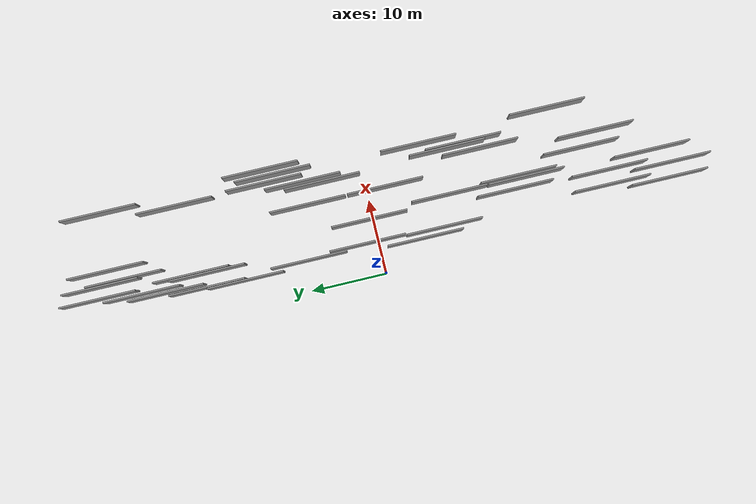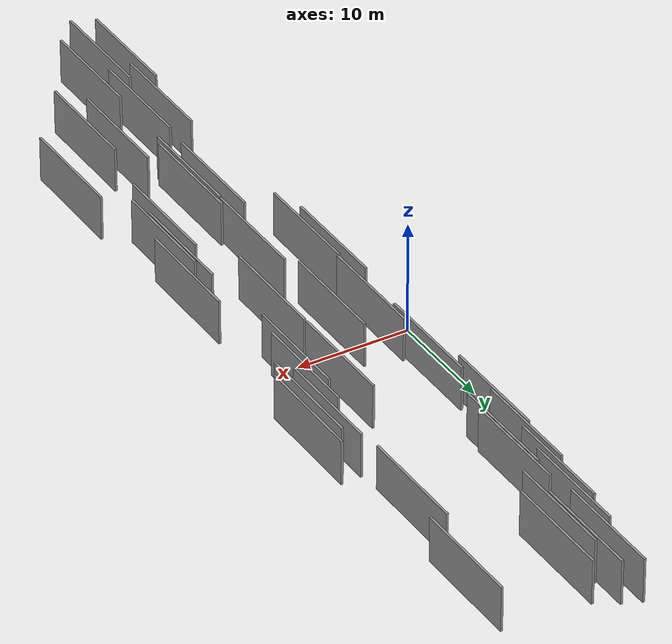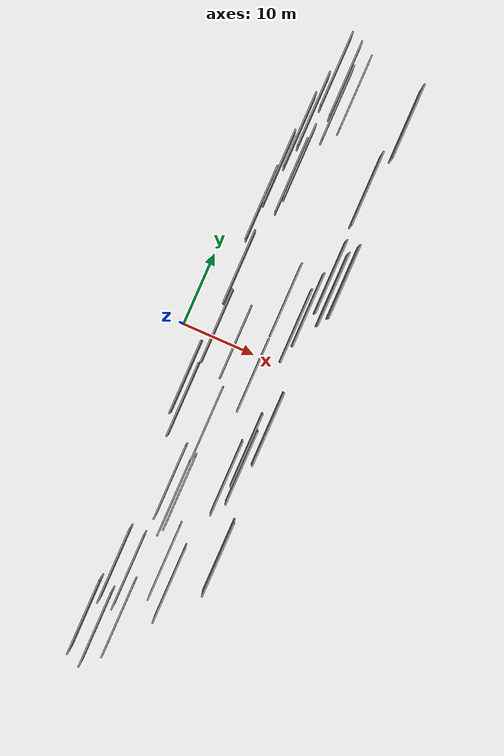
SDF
<sdf version="1.6">
 <world name="default">
  <scene>
   <sky><clouds><speed>12</speed></clouds></sky>
   <ambient>0.4 0.4 0.4 1</ambient>
   <background>0.7 0.7 0.7 1</background>
   <shadows>1</shadows>
  </scene>
  <gravity>0 0 -9.8066</gravity>
  <magnetic_field>6e-06 2.3e-05 -4.2e-05</magnetic_field>
  <physics default="0" name="default_physics" type="ode">
   <ode>
    <solver>
     <type>quick</type>
     <iters>10</iters>
     <sor>1.0</sor>
     <use_dynamic_moi_rescaling>0</use_dynamic_moi_rescaling>
    </solver>
    <constraints>
     <cfm>0</cfm>
     <erp>0.2</erp>
     <contact_max_correcting_vel>100</contact_max_correcting_vel>
     <contact_surface_layer>0.001</contact_surface_layer>
    </constraints>
   </ode>
   <max_step_size>0.004</max_step_size>
   <real_time_factor>1</real_time_factor>
   <real_time_update_rate>250</real_time_update_rate>
  </physics>
  <light name="sun" type="directional">
   <pose>0 0 10 0 0 0</pose>
   <diffuse>0.8 0.8 0.8 1</diffuse>
   <specular>0.2 0.2 0.2 1</specular>
   <attenuation>
    <range>1000</range>
    <constant>0.9</constant>
    <linear>0.01</linear>
    <quadratic>0.001</quadratic>
   </attenuation>
   <direction>-0.5 0.1 -0.9</direction>
  </light>
  <model name="grey_wall_1">
   <static>1</static>
   <pose>5.0728 36.7330 2.5 0.000000 0.000000 1.570796</pose>
   <link name="link">
    <pose>0 0 2.00 0 0 0</pose>
    <collision name="collision"><geometry><box><size>10.00 0.2 4.00</size></box></geometry></collision>
    <visual name="visual">
     <cast_shadows>0</cast_shadows>
     <geometry><box><size>10.00 0.2 4.00</size></box></geometry>
     <material>
      <script>
       <uri>model://grey_wall/materials/scripts</uri>
       <uri>model://grey_wall/materials/textures</uri>
       <name>vrc/grey_wall</name>
      </script>
     </material>
    </visual>
   </link>
  </model>
  <model name="grey_wall_2">
   <static>1</static>
   <pose>13.0026 -15.4827 2.5 0.000000 0.000000 1.570796</pose>
   <link name="link">
    <pose>0 0 2.00 0 0 0</pose>
    <collision name="collision"><geometry><box><size>10.00 0.2 4.00</size></box></geometry></collision>
    <visual name="visual">
     <cast_shadows>0</cast_shadows>
     <geometry><box><size>10.00 0.2 4.00</size></box></geometry>
     <material>
      <script>
       <uri>model://grey_wall/materials/scripts</uri>
       <uri>model://grey_wall/materials/textures</uri>
       <name>vrc/grey_wall</name>
      </script>
     </material>
    </visual>
   </link>
  </model>
  <model name="grey_wall_3">
   <static>1</static>
   <pose>14.5933 24.6313 2.5 0.000000 0.000000 1.570796</pose>
   <link name="link">
    <pose>0 0 2.00 0 0 0</pose>
    <collision name="collision"><geometry><box><size>10.00 0.2 4.00</size></box></geometry></collision>
    <visual name="visual">
     <cast_shadows>0</cast_shadows>
     <geometry><box><size>10.00 0.2 4.00</size></box></geometry>
     <material>
      <script>
       <uri>model://grey_wall/materials/scripts</uri>
       <uri>model://grey_wall/materials/textures</uri>
       <name>vrc/grey_wall</name>
      </script>
     </material>
    </visual>
   </link>
  </model>
  <model name="grey_wall_4">
   <static>1</static>
   <pose>15.7296 11.4250 2.5 0.000000 0.000000 1.570796</pose>
   <link name="link">
    <pose>0 0 2.00 0 0 0</pose>
    <collision name="collision"><geometry><box><size>10.00 0.2 4.00</size></box></geometry></collision>
    <visual name="visual">
     <cast_shadows>0</cast_shadows>
     <geometry><box><size>10.00 0.2 4.00</size></box></geometry>
     <material>
      <script>
       <uri>model://grey_wall/materials/scripts</uri>
       <uri>model://grey_wall/materials/textures</uri>
       <name>vrc/grey_wall</name>
      </script>
     </material>
    </visual>
   </link>
  </model>
  <model name="grey_wall_5">
   <static>1</static>
   <pose>11.8016 -30.5223 2.5 0.000000 0.000000 1.570796</pose>
   <link name="link">
    <pose>0 0 2.00 0 0 0</pose>
    <collision name="collision"><geometry><box><size>10.00 0.2 4.00</size></box></geometry></collision>
    <visual name="visual">
     <cast_shadows>0</cast_shadows>
     <geometry><box><size>10.00 0.2 4.00</size></box></geometry>
     <material>
      <script>
       <uri>model://grey_wall/materials/scripts</uri>
       <uri>model://grey_wall/materials/textures</uri>
       <name>vrc/grey_wall</name>
      </script>
     </material>
    </visual>
   </link>
  </model>
  <model name="grey_wall_6">
   <static>1</static>
   <pose>6.6062 36.1043 2.5 0.000000 0.000000 1.570796</pose>
   <link name="link">
    <pose>0 0 2.00 0 0 0</pose>
    <collision name="collision"><geometry><box><size>10.00 0.2 4.00</size></box></geometry></collision>
    <visual name="visual">
     <cast_shadows>0</cast_shadows>
     <geometry><box><size>10.00 0.2 4.00</size></box></geometry>
     <material>
      <script>
       <uri>model://grey_wall/materials/scripts</uri>
       <uri>model://grey_wall/materials/textures</uri>
       <name>vrc/grey_wall</name>
      </script>
     </material>
    </visual>
   </link>
  </model>
  <model name="grey_wall_7">
   <static>1</static>
   <pose>3.6469 -38.3258 2.5 0.000000 0.000000 1.570796</pose>
   <link name="link">
    <pose>0 0 2.00 0 0 0</pose>
    <collision name="collision"><geometry><box><size>10.00 0.2 4.00</size></box></geometry></collision>
    <visual name="visual">
     <cast_shadows>0</cast_shadows>
     <geometry><box><size>10.00 0.2 4.00</size></box></geometry>
     <material>
      <script>
       <uri>model://grey_wall/materials/scripts</uri>
       <uri>model://grey_wall/materials/textures</uri>
       <name>vrc/grey_wall</name>
      </script>
     </material>
    </visual>
   </link>
  </model>
  <model name="grey_wall_8">
   <static>1</static>
   <pose>4.2327 1.4274 2.5 0.000000 0.000000 1.570796</pose>
   <link name="link">
    <pose>0 0 2.00 0 0 0</pose>
    <collision name="collision"><geometry><box><size>10.00 0.2 4.00</size></box></geometry></collision>
    <visual name="visual">
     <cast_shadows>0</cast_shadows>
     <geometry><box><size>10.00 0.2 4.00</size></box></geometry>
     <material>
      <script>
       <uri>model://grey_wall/materials/scripts</uri>
       <uri>model://grey_wall/materials/textures</uri>
       <name>vrc/grey_wall</name>
      </script>
     </material>
    </visual>
   </link>
  </model>
  <model name="grey_wall_9">
   <static>1</static>
   <pose>15.3013 -7.8257 2.5 0.000000 0.000000 1.570796</pose>
   <link name="link">
    <pose>0 0 2.00 0 0 0</pose>
    <collision name="collision"><geometry><box><size>10.00 0.2 4.00</size></box></geometry></collision>
    <visual name="visual">
     <cast_shadows>0</cast_shadows>
     <geometry><box><size>10.00 0.2 4.00</size></box></geometry>
     <material>
      <script>
       <uri>model://grey_wall/materials/scripts</uri>
       <uri>model://grey_wall/materials/textures</uri>
       <name>vrc/grey_wall</name>
      </script>
     </material>
    </visual>
   </link>
  </model>
  <model name="grey_wall_10">
   <static>1</static>
   <pose>10.8585 7.8525 2.5 0.000000 0.000000 1.570796</pose>
   <link name="link">
    <pose>0 0 2.00 0 0 0</pose>
    <collision name="collision"><geometry><box><size>10.00 0.2 4.00</size></box></geometry></collision>
    <visual name="visual">
     <cast_shadows>0</cast_shadows>
     <geometry><box><size>10.00 0.2 4.00</size></box></geometry>
     <material>
      <script>
       <uri>model://grey_wall/materials/scripts</uri>
       <uri>model://grey_wall/materials/textures</uri>
       <name>vrc/grey_wall</name>
      </script>
     </material>
    </visual>
   </link>
  </model>
  <model name="grey_wall_11">
   <static>1</static>
   <pose>4.0507 -8.6808 2.5 0.000000 0.000000 1.570796</pose>
   <link name="link">
    <pose>0 0 2.00 0 0 0</pose>
    <collision name="collision"><geometry><box><size>10.00 0.2 4.00</size></box></geometry></collision>
    <visual name="visual">
     <cast_shadows>0</cast_shadows>
     <geometry><box><size>10.00 0.2 4.00</size></box></geometry>
     <material>
      <script>
       <uri>model://grey_wall/materials/scripts</uri>
       <uri>model://grey_wall/materials/textures</uri>
       <name>vrc/grey_wall</name>
      </script>
     </material>
    </visual>
   </link>
  </model>
  <model name="grey_wall_12">
   <static>1</static>
   <pose>7.9698 -20.4169 2.5 0.000000 0.000000 1.570796</pose>
   <link name="link">
    <pose>0 0 2.00 0 0 0</pose>
    <collision name="collision"><geometry><box><size>10.00 0.2 4.00</size></box></geometry></collision>
    <visual name="visual">
     <cast_shadows>0</cast_shadows>
     <geometry><box><size>10.00 0.2 4.00</size></box></geometry>
     <material>
      <script>
       <uri>model://grey_wall/materials/scripts</uri>
       <uri>model://grey_wall/materials/textures</uri>
       <name>vrc/grey_wall</name>
      </script>
     </material>
    </visual>
   </link>
  </model>
  <model name="grey_wall_13">
   <static>1</static>
   <pose>4.5124 -31.0169 2.5 0.000000 0.000000 1.570796</pose>
   <link name="link">
    <pose>0 0 2.00 0 0 0</pose>
    <collision name="collision"><geometry><box><size>10.00 0.2 4.00</size></box></geometry></collision>
    <visual name="visual">
     <cast_shadows>0</cast_shadows>
     <geometry><box><size>10.00 0.2 4.00</size></box></geometry>
     <material>
      <script>
       <uri>model://grey_wall/materials/scripts</uri>
       <uri>model://grey_wall/materials/textures</uri>
       <name>vrc/grey_wall</name>
      </script>
     </material>
    </visual>
   </link>
  </model>
  <model name="grey_wall_14">
   <static>1</static>
   <pose>6.7409 -18.6886 2.5 0.000000 0.000000 1.570796</pose>
   <link name="link">
    <pose>0 0 2.00 0 0 0</pose>
    <collision name="collision"><geometry><box><size>10.00 0.2 4.00</size></box></geometry></collision>
    <visual name="visual">
     <cast_shadows>0</cast_shadows>
     <geometry><box><size>10.00 0.2 4.00</size></box></geometry>
     <material>
      <script>
       <uri>model://grey_wall/materials/scripts</uri>
       <uri>model://grey_wall/materials/textures</uri>
       <name>vrc/grey_wall</name>
      </script>
     </material>
    </visual>
   </link>
  </model>
  <model name="grey_wall_15">
   <static>1</static>
   <pose>16.1051 -25.1058 2.5 0.000000 0.000000 1.570796</pose>
   <link name="link">
    <pose>0 0 2.00 0 0 0</pose>
    <collision name="collision"><geometry><box><size>10.00 0.2 4.00</size></box></geometry></collision>
    <visual name="visual">
     <cast_shadows>0</cast_shadows>
     <geometry><box><size>10.00 0.2 4.00</size></box></geometry>
     <material>
      <script>
       <uri>model://grey_wall/materials/scripts</uri>
       <uri>model://grey_wall/materials/textures</uri>
       <name>vrc/grey_wall</name>
      </script>
     </material>
    </visual>
   </link>
  </model>
  <model name="grey_wall_16">
   <static>1</static>
   <pose>10.1041 -28.1925 2.5 0.000000 0.000000 1.570796</pose>
   <link name="link">
    <pose>0 0 2.00 0 0 0</pose>
    <collision name="collision"><geometry><box><size>10.00 0.2 4.00</size></box></geometry></collision>
    <visual name="visual">
     <cast_shadows>0</cast_shadows>
     <geometry><box><size>10.00 0.2 4.00</size></box></geometry>
     <material>
      <script>
       <uri>model://grey_wall/materials/scripts</uri>
       <uri>model://grey_wall/materials/textures</uri>
       <name>vrc/grey_wall</name>
      </script>
     </material>
    </visual>
   </link>
  </model>
  <model name="grey_wall_17">
   <static>1</static>
   <pose>15.8898 34.3569 2.5 0.000000 0.000000 1.570796</pose>
   <link name="link">
    <pose>0 0 2.00 0 0 0</pose>
    <collision name="collision"><geometry><box><size>10.00 0.2 4.00</size></box></geometry></collision>
    <visual name="visual">
     <cast_shadows>0</cast_shadows>
     <geometry><box><size>10.00 0.2 4.00</size></box></geometry>
     <material>
      <script>
       <uri>model://grey_wall/materials/scripts</uri>
       <uri>model://grey_wall/materials/textures</uri>
       <name>vrc/grey_wall</name>
      </script>
     </material>
    </visual>
   </link>
  </model>
  <model name="grey_wall_18">
   <static>1</static>
   <pose>3.1730 17.7629 2.5 0.000000 0.000000 1.570796</pose>
   <link name="link">
    <pose>0 0 2.00 0 0 0</pose>
    <collision name="collision"><geometry><box><size>10.00 0.2 4.00</size></box></geometry></collision>
    <visual name="visual">
     <cast_shadows>0</cast_shadows>
     <geometry><box><size>10.00 0.2 4.00</size></box></geometry>
     <material>
      <script>
       <uri>model://grey_wall/materials/scripts</uri>
       <uri>model://grey_wall/materials/textures</uri>
       <name>vrc/grey_wall</name>
      </script>
     </material>
    </visual>
   </link>
  </model>
  <model name="grey_wall_19">
   <static>1</static>
   <pose>6.4500 -31.0621 2.5 0.000000 0.000000 1.570796</pose>
   <link name="link">
    <pose>0 0 2.00 0 0 0</pose>
    <collision name="collision"><geometry><box><size>10.00 0.2 4.00</size></box></geometry></collision>
    <visual name="visual">
     <cast_shadows>0</cast_shadows>
     <geometry><box><size>10.00 0.2 4.00</size></box></geometry>
     <material>
      <script>
       <uri>model://grey_wall/materials/scripts</uri>
       <uri>model://grey_wall/materials/textures</uri>
       <name>vrc/grey_wall</name>
      </script>
     </material>
    </visual>
   </link>
  </model>
  <model name="grey_wall_20">
   <static>1</static>
   <pose>14.8549 12.7727 2.5 0.000000 0.000000 1.570796</pose>
   <link name="link">
    <pose>0 0 2.00 0 0 0</pose>
    <collision name="collision"><geometry><box><size>10.00 0.2 4.00</size></box></geometry></collision>
    <visual name="visual">
     <cast_shadows>0</cast_shadows>
     <geometry><box><size>10.00 0.2 4.00</size></box></geometry>
     <material>
      <script>
       <uri>model://grey_wall/materials/scripts</uri>
       <uri>model://grey_wall/materials/textures</uri>
       <name>vrc/grey_wall</name>
      </script>
     </material>
    </visual>
   </link>
  </model>
  <model name="grey_wall_21">
   <static>1</static>
   <pose>13.9153 -11.3150 2.5 0.000000 0.000000 1.570796</pose>
   <link name="link">
    <pose>0 0 2.00 0 0 0</pose>
    <collision name="collision"><geometry><box><size>10.00 0.2 4.00</size></box></geometry></collision>
    <visual name="visual">
     <cast_shadows>0</cast_shadows>
     <geometry><box><size>10.00 0.2 4.00</size></box></geometry>
     <material>
      <script>
       <uri>model://grey_wall/materials/scripts</uri>
       <uri>model://grey_wall/materials/textures</uri>
       <name>vrc/grey_wall</name>
      </script>
     </material>
    </visual>
   </link>
  </model>
  <model name="grey_wall_22">
   <static>1</static>
   <pose>5.5779 -39.1856 2.5 0.000000 0.000000 1.570796</pose>
   <link name="link">
    <pose>0 0 2.00 0 0 0</pose>
    <collision name="collision"><geometry><box><size>10.00 0.2 4.00</size></box></geometry></collision>
    <visual name="visual">
     <cast_shadows>0</cast_shadows>
     <geometry><box><size>10.00 0.2 4.00</size></box></geometry>
     <material>
      <script>
       <uri>model://grey_wall/materials/scripts</uri>
       <uri>model://grey_wall/materials/textures</uri>
       <name>vrc/grey_wall</name>
      </script>
     </material>
    </visual>
   </link>
  </model>
  <model name="grey_wall_23">
   <static>1</static>
   <pose>7.2116 0.5257 2.5 0.000000 0.000000 1.570796</pose>
   <link name="link">
    <pose>0 0 2.00 0 0 0</pose>
    <collision name="collision"><geometry><box><size>10.00 0.2 4.00</size></box></geometry></collision>
    <visual name="visual">
     <cast_shadows>0</cast_shadows>
     <geometry><box><size>10.00 0.2 4.00</size></box></geometry>
     <material>
      <script>
       <uri>model://grey_wall/materials/scripts</uri>
       <uri>model://grey_wall/materials/textures</uri>
       <name>vrc/grey_wall</name>
      </script>
     </material>
    </visual>
   </link>
  </model>
  <model name="grey_wall_24">
   <static>1</static>
   <pose>8.4125 34.9837 2.5 0.000000 0.000000 1.570796</pose>
   <link name="link">
    <pose>0 0 2.00 0 0 0</pose>
    <collision name="collision"><geometry><box><size>10.00 0.2 4.00</size></box></geometry></collision>
    <visual name="visual">
     <cast_shadows>0</cast_shadows>
     <geometry><box><size>10.00 0.2 4.00</size></box></geometry>
     <material>
      <script>
       <uri>model://grey_wall/materials/scripts</uri>
       <uri>model://grey_wall/materials/textures</uri>
       <name>vrc/grey_wall</name>
      </script>
     </material>
    </visual>
   </link>
  </model>
  <model name="grey_wall_25">
   <static>1</static>
   <pose>5.2336 22.3768 2.5 0.000000 0.000000 1.570796</pose>
   <link name="link">
    <pose>0 0 2.00 0 0 0</pose>
    <collision name="collision"><geometry><box><size>10.00 0.2 4.00</size></box></geometry></collision>
    <visual name="visual">
     <cast_shadows>0</cast_shadows>
     <geometry><box><size>10.00 0.2 4.00</size></box></geometry>
     <material>
      <script>
       <uri>model://grey_wall/materials/scripts</uri>
       <uri>model://grey_wall/materials/textures</uri>
       <name>vrc/grey_wall</name>
      </script>
     </material>
    </visual>
   </link>
  </model>
  <model name="grey_wall_26">
   <static>1</static>
   <pose>5.4845 24.4235 2.5 0.000000 0.000000 1.570796</pose>
   <link name="link">
    <pose>0 0 2.00 0 0 0</pose>
    <collision name="collision"><geometry><box><size>10.00 0.2 4.00</size></box></geometry></collision>
    <visual name="visual">
     <cast_shadows>0</cast_shadows>
     <geometry><box><size>10.00 0.2 4.00</size></box></geometry>
     <material>
      <script>
       <uri>model://grey_wall/materials/scripts</uri>
       <uri>model://grey_wall/materials/textures</uri>
       <name>vrc/grey_wall</name>
      </script>
     </material>
    </visual>
   </link>
  </model>
  <model name="grey_wall_27">
   <static>1</static>
   <pose>10.8734 -2.3940 2.5 0.000000 0.000000 1.570796</pose>
   <link name="link">
    <pose>0 0 2.00 0 0 0</pose>
    <collision name="collision"><geometry><box><size>10.00 0.2 4.00</size></box></geometry></collision>
    <visual name="visual">
     <cast_shadows>0</cast_shadows>
     <geometry><box><size>10.00 0.2 4.00</size></box></geometry>
     <material>
      <script>
       <uri>model://grey_wall/materials/scripts</uri>
       <uri>model://grey_wall/materials/textures</uri>
       <name>vrc/grey_wall</name>
      </script>
     </material>
    </visual>
   </link>
  </model>
  <model name="grey_wall_28">
   <static>1</static>
   <pose>8.0346 -10.2580 2.5 0.000000 0.000000 1.570796</pose>
   <link name="link">
    <pose>0 0 2.00 0 0 0</pose>
    <collision name="collision"><geometry><box><size>10.00 0.2 4.00</size></box></geometry></collision>
    <visual name="visual">
     <cast_shadows>0</cast_shadows>
     <geometry><box><size>10.00 0.2 4.00</size></box></geometry>
     <material>
      <script>
       <uri>model://grey_wall/materials/scripts</uri>
       <uri>model://grey_wall/materials/textures</uri>
       <name>vrc/grey_wall</name>
      </script>
     </material>
    </visual>
   </link>
  </model>
  <model name="grey_wall_29">
   <static>1</static>
   <pose>8.3602 -19.4955 2.5 0.000000 0.000000 1.570796</pose>
   <link name="link">
    <pose>0 0 2.00 0 0 0</pose>
    <collision name="collision"><geometry><box><size>10.00 0.2 4.00</size></box></geometry></collision>
    <visual name="visual">
     <cast_shadows>0</cast_shadows>
     <geometry><box><size>10.00 0.2 4.00</size></box></geometry>
     <material>
      <script>
       <uri>model://grey_wall/materials/scripts</uri>
       <uri>model://grey_wall/materials/textures</uri>
       <name>vrc/grey_wall</name>
      </script>
     </material>
    </visual>
   </link>
  </model>
  <model name="grey_wall_30">
   <static>1</static>
   <pose>16.6085 12.8452 2.5 0.000000 0.000000 1.570796</pose>
   <link name="link">
    <pose>0 0 2.00 0 0 0</pose>
    <collision name="collision"><geometry><box><size>10.00 0.2 4.00</size></box></geometry></collision>
    <visual name="visual">
     <cast_shadows>0</cast_shadows>
     <geometry><box><size>10.00 0.2 4.00</size></box></geometry>
     <material>
      <script>
       <uri>model://grey_wall/materials/scripts</uri>
       <uri>model://grey_wall/materials/textures</uri>
       <name>vrc/grey_wall</name>
      </script>
     </material>
    </visual>
   </link>
  </model>
  <model name="grey_wall_31">
   <static>1</static>
   <pose>4.4614 31.0731 2.5 0.000000 0.000000 1.570796</pose>
   <link name="link">
    <pose>0 0 2.00 0 0 0</pose>
    <collision name="collision"><geometry><box><size>10.00 0.2 4.00</size></box></geometry></collision>
    <visual name="visual">
     <cast_shadows>0</cast_shadows>
     <geometry><box><size>10.00 0.2 4.00</size></box></geometry>
     <material>
      <script>
       <uri>model://grey_wall/materials/scripts</uri>
       <uri>model://grey_wall/materials/textures</uri>
       <name>vrc/grey_wall</name>
      </script>
     </material>
    </visual>
   </link>
  </model>
  <model name="grey_wall_32">
   <static>1</static>
   <pose>3.9071 28.0610 2.5 0.000000 0.000000 1.570796</pose>
   <link name="link">
    <pose>0 0 2.00 0 0 0</pose>
    <collision name="collision"><geometry><box><size>10.00 0.2 4.00</size></box></geometry></collision>
    <visual name="visual">
     <cast_shadows>0</cast_shadows>
     <geometry><box><size>10.00 0.2 4.00</size></box></geometry>
     <material>
      <script>
       <uri>model://grey_wall/materials/scripts</uri>
       <uri>model://grey_wall/materials/textures</uri>
       <name>vrc/grey_wall</name>
      </script>
     </material>
    </visual>
   </link>
  </model>
  <model name="grey_wall_33">
   <static>1</static>
   <pose>6.9121 32.9536 2.5 0.000000 0.000000 1.570796</pose>
   <link name="link">
    <pose>0 0 2.00 0 0 0</pose>
    <collision name="collision"><geometry><box><size>10.00 0.2 4.00</size></box></geometry></collision>
    <visual name="visual">
     <cast_shadows>0</cast_shadows>
     <geometry><box><size>10.00 0.2 4.00</size></box></geometry>
     <material>
      <script>
       <uri>model://grey_wall/materials/scripts</uri>
       <uri>model://grey_wall/materials/textures</uri>
       <name>vrc/grey_wall</name>
      </script>
     </material>
    </visual>
   </link>
  </model>
  <model name="grey_wall_34">
   <static>1</static>
   <pose>3.8368 9.2773 2.5 0.000000 0.000000 1.570796</pose>
   <link name="link">
    <pose>0 0 2.00 0 0 0</pose>
    <collision name="collision"><geometry><box><size>10.00 0.2 4.00</size></box></geometry></collision>
    <visual name="visual">
     <cast_shadows>0</cast_shadows>
     <geometry><box><size>10.00 0.2 4.00</size></box></geometry>
     <material>
      <script>
       <uri>model://grey_wall/materials/scripts</uri>
       <uri>model://grey_wall/materials/textures</uri>
       <name>vrc/grey_wall</name>
      </script>
     </material>
    </visual>
   </link>
  </model>
  <model name="grey_wall_35">
   <static>1</static>
   <pose>7.6962 -36.9765 2.5 0.000000 0.000000 1.570796</pose>
   <link name="link">
    <pose>0 0 2.00 0 0 0</pose>
    <collision name="collision"><geometry><box><size>10.00 0.2 4.00</size></box></geometry></collision>
    <visual name="visual">
     <cast_shadows>0</cast_shadows>
     <geometry><box><size>10.00 0.2 4.00</size></box></geometry>
     <material>
      <script>
       <uri>model://grey_wall/materials/scripts</uri>
       <uri>model://grey_wall/materials/textures</uri>
       <name>vrc/grey_wall</name>
      </script>
     </material>
    </visual>
   </link>
  </model>
  <model name="grey_wall_36">
   <static>1</static>
   <pose>14.1979 -13.5140 2.5 0.000000 0.000000 1.570796</pose>
   <link name="link">
    <pose>0 0 2.00 0 0 0</pose>
    <collision name="collision"><geometry><box><size>10.00 0.2 4.00</size></box></geometry></collision>
    <visual name="visual">
     <cast_shadows>0</cast_shadows>
     <geometry><box><size>10.00 0.2 4.00</size></box></geometry>
     <material>
      <script>
       <uri>model://grey_wall/materials/scripts</uri>
       <uri>model://grey_wall/materials/textures</uri>
       <name>vrc/grey_wall</name>
      </script>
     </material>
    </visual>
   </link>
  </model>
  <model name="grey_wall_37">
   <static>1</static>
   <pose>13.3239 5.3952 2.5 0.000000 0.000000 1.570796</pose>
   <link name="link">
    <pose>0 0 2.00 0 0 0</pose>
    <collision name="collision"><geometry><box><size>10.00 0.2 4.00</size></box></geometry></collision>
    <visual name="visual">
     <cast_shadows>0</cast_shadows>
     <geometry><box><size>10.00 0.2 4.00</size></box></geometry>
     <material>
      <script>
       <uri>model://grey_wall/materials/scripts</uri>
       <uri>model://grey_wall/materials/textures</uri>
       <name>vrc/grey_wall</name>
      </script>
     </material>
    </visual>
   </link>
  </model>
  <model name="grey_wall_38">
   <static>1</static>
   <pose>3.2249 -5.9588 2.5 0.000000 0.000000 1.570796</pose>
   <link name="link">
    <pose>0 0 2.00 0 0 0</pose>
    <collision name="collision"><geometry><box><size>10.00 0.2 4.00</size></box></geometry></collision>
    <visual name="visual">
     <cast_shadows>0</cast_shadows>
     <geometry><box><size>10.00 0.2 4.00</size></box></geometry>
     <material>
      <script>
       <uri>model://grey_wall/materials/scripts</uri>
       <uri>model://grey_wall/materials/textures</uri>
       <name>vrc/grey_wall</name>
      </script>
     </material>
    </visual>
   </link>
  </model>
  <model name="grey_wall_39">
   <static>1</static>
   <pose>3.4113 22.7341 2.5 0.000000 0.000000 1.570796</pose>
   <link name="link">
    <pose>0 0 2.00 0 0 0</pose>
    <collision name="collision"><geometry><box><size>10.00 0.2 4.00</size></box></geometry></collision>
    <visual name="visual">
     <cast_shadows>0</cast_shadows>
     <geometry><box><size>10.00 0.2 4.00</size></box></geometry>
     <material>
      <script>
       <uri>model://grey_wall/materials/scripts</uri>
       <uri>model://grey_wall/materials/textures</uri>
       <name>vrc/grey_wall</name>
      </script>
     </material>
    </visual>
   </link>
  </model>
  <model name="grey_wall_40">
   <static>1</static>
   <pose>13.9156 7.8383 2.5 0.000000 0.000000 1.570796</pose>
   <link name="link">
    <pose>0 0 2.00 0 0 0</pose>
    <collision name="collision"><geometry><box><size>10.00 0.2 4.00</size></box></geometry></collision>
    <visual name="visual">
     <cast_shadows>0</cast_shadows>
     <geometry><box><size>10.00 0.2 4.00</size></box></geometry>
     <material>
      <script>
       <uri>model://grey_wall/materials/scripts</uri>
       <uri>model://grey_wall/materials/textures</uri>
       <name>vrc/grey_wall</name>
      </script>
     </material>
    </visual>
   </link>
  </model>
 </world>
</sdf>
